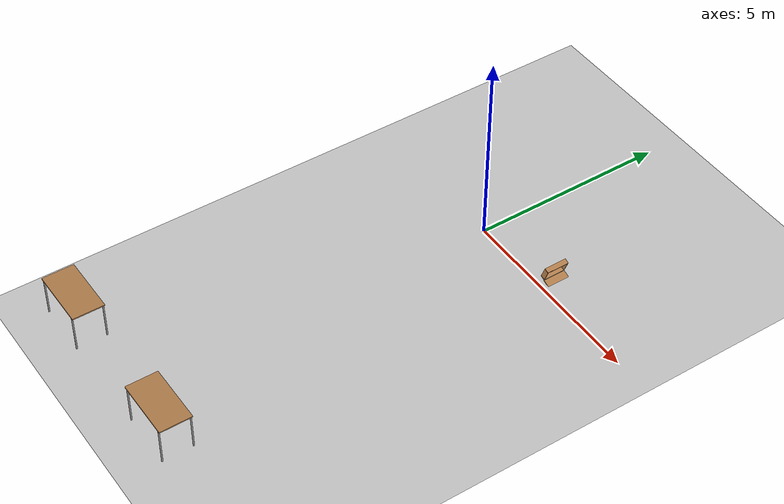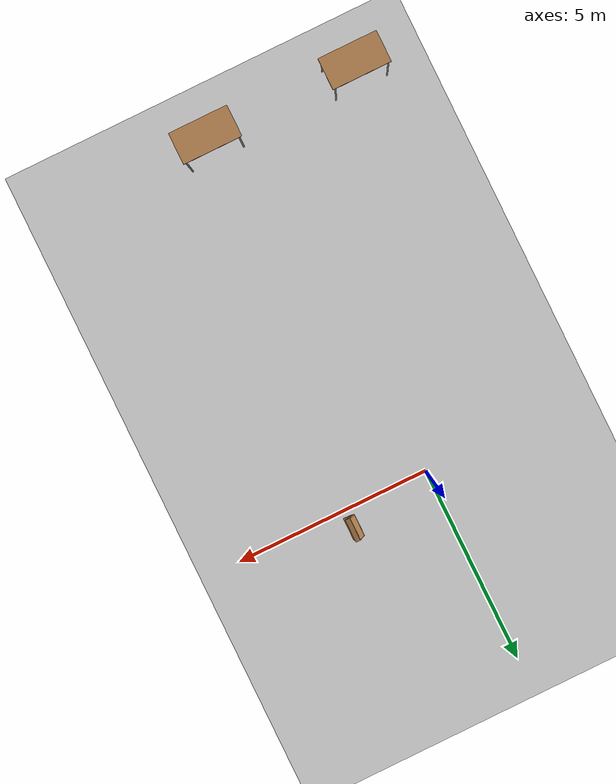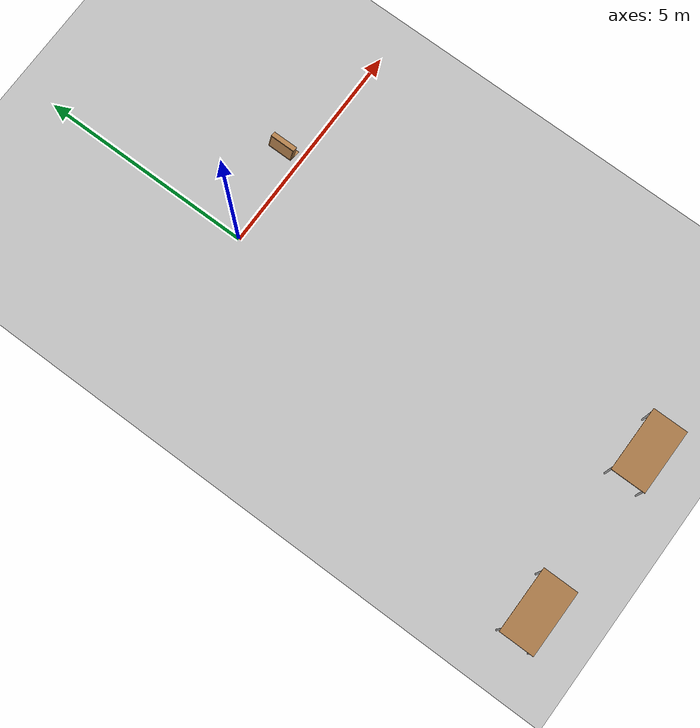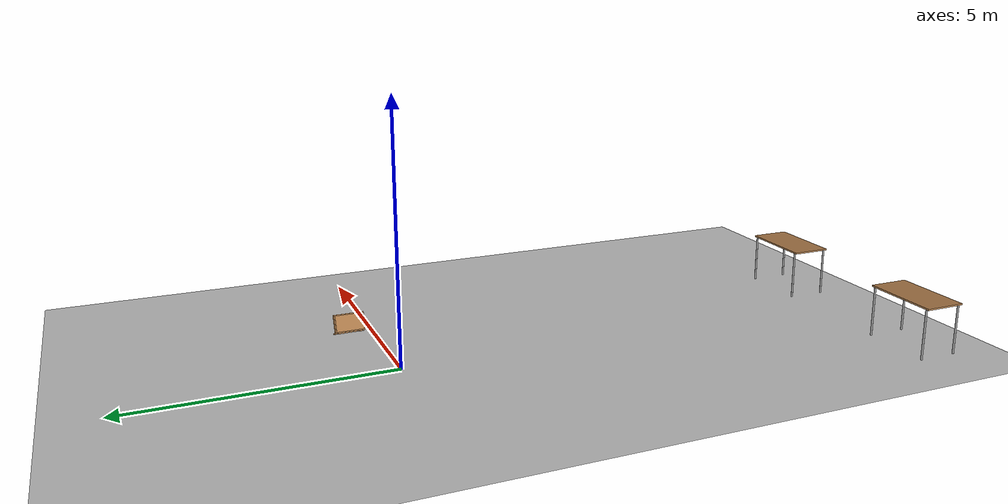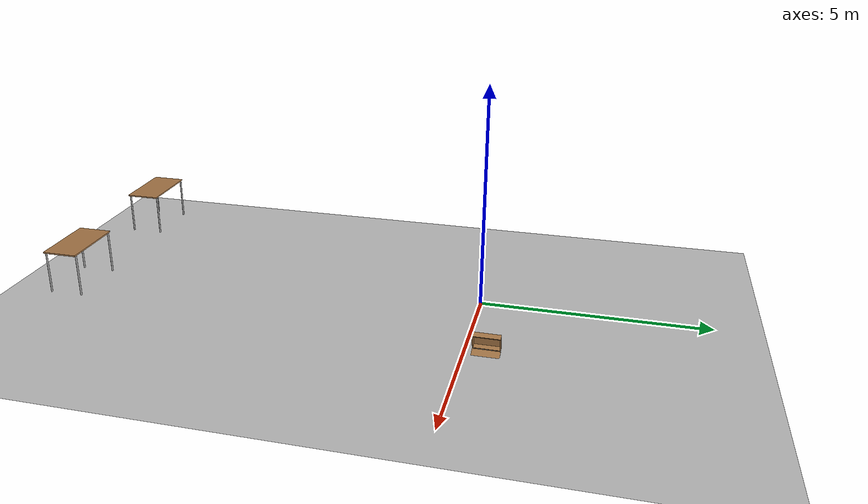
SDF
<sdf version="1.6">
 <world name="default">
  <light name="sun" type="directional">
   <pose>0 0 10 0 -0 0</pose>
   <diffuse>0.8 0.8 0.8 1</diffuse>
   <specular>0.2 0.2 0.2 1</specular>
   <attenuation>
    <range>1000</range>
    <constant>0.9</constant>
    <linear>0.01</linear>
    <quadratic>0.001</quadratic>
   </attenuation>
   <direction>-0.5 0.1 -0.9</direction>
  </light>
  <model name="ground_plane">
   <static>1</static>
   <link name="link">
    <collision name="collision">
     <geometry><plane><normal>0 0 1</normal><size>100 100</size></plane></geometry>
     <surface>
      <contact><collide_bitmask>65535</collide_bitmask></contact>
      <friction><ode><mu>100</mu><mu2>50</mu2></ode></friction>
     </surface>
    </collision>
    <visual name="visual">
     <cast_shadows>0</cast_shadows>
     <geometry><plane><normal>0 0 1</normal><size>100 100</size></plane></geometry>
     <material>
      <script><uri>file://media/materials/scripts/gazebo.material</uri><name>Gazebo/Grey</name></script>
     </material>
    </visual>
   </link>
  </model>
  <gravity>0 0 -9.8</gravity>
  <magnetic_field>6e-06 2.3e-05 -4.2e-05</magnetic_field>
  <atmosphere type="adiabatic"/>
  <physics name="default_physics" default="0" type="ode">
   <max_step_size>0.001</max_step_size>
   <real_time_factor>1</real_time_factor>
   <real_time_update_rate>1000</real_time_update_rate>
  </physics>
  <scene><ambient>0.4 0.4 0.4 1</ambient><background>0.7 0.7 0.7 1</background><shadows>1</shadows></scene>
  <spherical_coordinates>
   <surface_model>EARTH_WGS84</surface_model>
   <latitude_deg>0</latitude_deg>
   <longitude_deg>0</longitude_deg>
   <elevation>0</elevation>
   <heading_deg>0</heading_deg>
  </spherical_coordinates>
  <model name="table">
   <static>1</static>
   <link name="link">
    <collision name="surface">
     <pose>0 0 1 0 -0 0</pose>
     <geometry><box><size>1.5 0.8 0.03</size></box></geometry>
     <surface><friction><ode><mu>0.6</mu><mu2>0.6</mu2></ode></friction></surface>
    </collision>
    <visual name="visual1">
     <pose>0 0 1 0 -0 0</pose>
     <geometry><box><size>1.5 0.8 0.03</size></box></geometry>
     <material>
      <script><uri>file://media/materials/scripts/gazebo.material</uri><name>Gazebo/Wood</name></script>
     </material>
    </visual>
    <collision name="front_left_leg">
     <pose>0.68 0.38 0.5 0 -0 0</pose>
     <geometry><cylinder><radius>0.02</radius><length>1</length></cylinder></geometry>
    </collision>
    <visual name="front_left_leg">
     <pose>0.68 0.38 0.5 0 -0 0</pose>
     <geometry><cylinder><radius>0.02</radius><length>1</length></cylinder></geometry>
     <material>
      <script><uri>file://media/materials/scripts/gazebo.material</uri><name>Gazebo/Grey</name></script>
     </material>
    </visual>
    <collision name="front_right_leg">
     <pose>0.68 -0.38 0.5 0 -0 0</pose>
     <geometry><cylinder><radius>0.02</radius><length>1</length></cylinder></geometry>
    </collision>
    <visual name="front_right_leg">
     <pose>0.68 -0.38 0.5 0 -0 0</pose>
     <geometry><cylinder><radius>0.02</radius><length>1</length></cylinder></geometry>
     <material>
      <script><uri>file://media/materials/scripts/gazebo.material</uri><name>Gazebo/Grey</name></script>
     </material>
    </visual>
    <collision name="back_right_leg">
     <pose>-0.68 -0.38 0.5 0 -0 0</pose>
     <geometry><cylinder><radius>0.02</radius><length>1</length></cylinder></geometry>
    </collision>
    <visual name="back_right_leg">
     <pose>-0.68 -0.38 0.5 0 -0 0</pose>
     <geometry><cylinder><radius>0.02</radius><length>1</length></cylinder></geometry>
     <material>
      <script><uri>file://media/materials/scripts/gazebo.material</uri><name>Gazebo/Grey</name></script>
     </material>
    </visual>
    <collision name="back_left_leg">
     <pose>-0.68 0.38 0.5 0 -0 0</pose>
     <geometry><cylinder><radius>0.02</radius><length>1</length></cylinder></geometry>
    </collision>
    <visual name="back_left_leg">
     <pose>-0.68 0.38 0.5 0 -0 0</pose>
     <geometry><cylinder><radius>0.02</radius><length>1</length></cylinder></geometry>
     <material>
      <script><uri>file://media/materials/scripts/gazebo.material</uri><name>Gazebo/Grey</name></script>
     </material>
    </visual>
   </link>
   <pose>1.18623 -9.30961 0 0 -0 0</pose>
  </model>
  <model name="table_0">
   <static>1</static>
   <link name="link">
    <collision name="surface">
     <pose>0 0 1 0 -0 0</pose>
     <geometry><box><size>1.5 0.8 0.03</size></box></geometry>
     <surface><friction><ode><mu>0.6</mu><mu2>0.6</mu2></ode></friction></surface>
    </collision>
    <visual name="visual1">
     <pose>0 0 1 0 -0 0</pose>
     <geometry><box><size>1.5 0.8 0.03</size></box></geometry>
     <material>
      <script><uri>file://media/materials/scripts/gazebo.material</uri><name>Gazebo/Wood</name></script>
     </material>
    </visual>
    <collision name="front_left_leg">
     <pose>0.68 0.38 0.5 0 -0 0</pose>
     <geometry><cylinder><radius>0.02</radius><length>1</length></cylinder></geometry>
    </collision>
    <visual name="front_left_leg">
     <pose>0.68 0.38 0.5 0 -0 0</pose>
     <geometry><cylinder><radius>0.02</radius><length>1</length></cylinder></geometry>
     <material>
      <script><uri>file://media/materials/scripts/gazebo.material</uri><name>Gazebo/Grey</name></script>
     </material>
    </visual>
    <collision name="front_right_leg">
     <pose>0.68 -0.38 0.5 0 -0 0</pose>
     <geometry><cylinder><radius>0.02</radius><length>1</length></cylinder></geometry>
    </collision>
    <visual name="front_right_leg">
     <pose>0.68 -0.38 0.5 0 -0 0</pose>
     <geometry><cylinder><radius>0.02</radius><length>1</length></cylinder></geometry>
     <material>
      <script><uri>file://media/materials/scripts/gazebo.material</uri><name>Gazebo/Grey</name></script>
     </material>
    </visual>
    <collision name="back_right_leg">
     <pose>-0.68 -0.38 0.5 0 -0 0</pose>
     <geometry><cylinder><radius>0.02</radius><length>1</length></cylinder></geometry>
    </collision>
    <visual name="back_right_leg">
     <pose>-0.68 -0.38 0.5 0 -0 0</pose>
     <geometry><cylinder><radius>0.02</radius><length>1</length></cylinder></geometry>
     <material>
      <script><uri>file://media/materials/scripts/gazebo.material</uri><name>Gazebo/Grey</name></script>
     </material>
    </visual>
    <collision name="back_left_leg">
     <pose>-0.68 0.38 0.5 0 -0 0</pose>
     <geometry><cylinder><radius>0.02</radius><length>1</length></cylinder></geometry>
    </collision>
    <visual name="back_left_leg">
     <pose>-0.68 0.38 0.5 0 -0 0</pose>
     <geometry><cylinder><radius>0.02</radius><length>1</length></cylinder></geometry>
     <material>
      <script><uri>file://media/materials/scripts/gazebo.material</uri><name>Gazebo/Grey</name></script>
     </material>
    </visual>
   </link>
   <pose>-2.65841 -9.34469 0 0 -0 0</pose>
  </model>
  <model name="wooden_case">
   <link name="base">
    <pose>0 0 0.024 0 -0 0</pose>
    <inertial>
     <pose>-0.022184 0 0.171592 0 -0 0</pose>
     <mass>3.96264</mass>
     <inertia>
      <ixx>0.213536</ixx>
      <ixy>0</ixy>
      <ixz>0.000779377</ixz>
      <iyy>0.0708943</iyy>
      <iyz>0</iyz>
      <izz>0.154604</izz>
     </inertia>
    </inertial>
    <collision name="collision_back">
     <pose>-0.053975 0 0.1778 0 -0 0</pose>
     <geometry><box><size>0.01905 0.5461 0.3175</size></box></geometry>
     <surface>
      <contact>
       <poissons_ratio>0.347</poissons_ratio>
       <elastic_modulus>8.8e+09</elastic_modulus>
       <ode><kp>100000</kp><kd>100</kd><max_vel>100</max_vel><min_depth>0.001</min_depth></ode>
      </contact>
      <friction>
       <torsional>
        <coefficient>1</coefficient>
        <use_patch_radius>0</use_patch_radius>
        <surface_radius>0.01</surface_radius>
       </torsional>
      </friction>
     </surface>
    </collision>
    <visual name="visual_back">
     <pose>-0.053975 0 0.1778 0 -0 0</pose>
     <geometry><box><size>0.01905 0.5461 0.3175</size></box></geometry>
     <material>
      <script><uri>file://media/materials/scripts/gazebo.material</uri><name>Gazebo/Wood</name></script>
     </material>
    </visual>
    <collision name="collision_bottom">
     <pose>0 0 0.009525 0 -0 0</pose>
     <geometry><box><size>0.127 0.5842 0.01905</size></box></geometry>
     <surface>
      <contact>
       <poissons_ratio>0.347</poissons_ratio>
       <elastic_modulus>8.8e+09</elastic_modulus>
       <ode><kp>100000</kp><kd>100</kd><max_vel>100</max_vel><min_depth>0.001</min_depth></ode>
      </contact>
      <friction>
       <torsional>
        <coefficient>1</coefficient>
        <use_patch_radius>0</use_patch_radius>
        <surface_radius>0.01</surface_radius>
       </torsional>
      </friction>
     </surface>
    </collision>
    <visual name="visual_bottom">
     <pose>0 0 0.009525 0 -0 0</pose>
     <geometry><box><size>0.127 0.5842 0.01905</size></box></geometry>
     <material>
      <script><uri>file://media/materials/scripts/gazebo.material</uri><name>Gazebo/Wood</name></script>
     </material>
    </visual>
    <collision name="collision_top">
     <pose>0 0 0.346075 0 -0 0</pose>
     <geometry><box><size>0.127 0.5842 0.01905</size></box></geometry>
     <surface>
      <contact>
       <poissons_ratio>0.347</poissons_ratio>
       <elastic_modulus>8.8e+09</elastic_modulus>
       <ode><kp>100000</kp><kd>100</kd><max_vel>100</max_vel><min_depth>0.001</min_depth></ode>
      </contact>
      <friction>
       <torsional>
        <coefficient>1</coefficient>
        <use_patch_radius>0</use_patch_radius>
        <surface_radius>0.01</surface_radius>
       </torsional>
      </friction>
     </surface>
    </collision>
    <visual name="visual_top">
     <pose>0 0 0.346075 0 -0 0</pose>
     <geometry><box><size>0.127 0.5842 0.01905</size></box></geometry>
     <material>
      <script><uri>file://media/materials/scripts/gazebo.material</uri><name>Gazebo/Wood</name></script>
     </material>
    </visual>
    <collision name="collision_left">
     <pose>0 -0.282575 0.1778 0 -0 0</pose>
     <geometry><box><size>0.127 0.01905 0.3175</size></box></geometry>
     <surface>
      <contact>
       <poissons_ratio>0.347</poissons_ratio>
       <elastic_modulus>8.8e+09</elastic_modulus>
       <ode><kp>100000</kp><kd>100</kd><max_vel>100</max_vel><min_depth>0.001</min_depth></ode>
      </contact>
      <friction>
       <torsional>
        <coefficient>1</coefficient>
        <use_patch_radius>0</use_patch_radius>
        <surface_radius>0.01</surface_radius>
       </torsional>
      </friction>
     </surface>
    </collision>
    <visual name="visual_left">
     <pose>0 -0.282575 0.1778 0 -0 0</pose>
     <geometry><box><size>0.127 0.01905 0.3175</size></box></geometry>
     <material>
      <script><uri>file://media/materials/scripts/gazebo.material</uri><name>Gazebo/Wood</name></script>
     </material>
    </visual>
    <collision name="collision_right">
     <pose>0 0.282575 0.1778 0 -0 0</pose>
     <geometry><box><size>0.127 0.01905 0.3175</size></box></geometry>
     <surface>
      <contact>
       <poissons_ratio>0.347</poissons_ratio>
       <elastic_modulus>8.8e+09</elastic_modulus>
       <ode><kp>100000</kp><kd>100</kd><max_vel>100</max_vel><min_depth>0.001</min_depth></ode>
      </contact>
      <friction>
       <torsional>
        <coefficient>1</coefficient>
        <use_patch_radius>0</use_patch_radius>
        <surface_radius>0.01</surface_radius>
       </torsional>
      </friction>
     </surface>
    </collision>
    <visual name="visual_right">
     <pose>0 0.282575 0.1778 0 -0 0</pose>
     <geometry><box><size>0.127 0.01905 0.3175</size></box></geometry>
     <material>
      <script><uri>file://media/materials/scripts/gazebo.material</uri><name>Gazebo/Wood</name></script>
     </material>
    </visual>
    <collision name="collision_block_left">
     <pose>0.0095 -0.2151 -0.012 0 -0 0</pose>
     <geometry><box><size>0.108 0.05 0.024</size></box></geometry>
     <surface>
      <contact>
       <poissons_ratio>0.347</poissons_ratio>
       <elastic_modulus>8.8e+09</elastic_modulus>
       <ode><kp>100000</kp><kd>100</kd><max_vel>100</max_vel><min_depth>0.001</min_depth></ode>
      </contact>
      <friction>
       <torsional>
        <coefficient>1</coefficient>
        <use_patch_radius>0</use_patch_radius>
        <surface_radius>0.01</surface_radius>
       </torsional>
      </friction>
     </surface>
    </collision>
    <visual name="visual_block_left">
     <pose>0.0095 -0.2151 -0.012 0 -0 0</pose>
     <geometry><box><size>0.108 0.05 0.024</size></box></geometry>
     <material>
      <script><uri>file://media/materials/scripts/gazebo.material</uri><name>Gazebo/Wood</name></script>
     </material>
    </visual>
    <collision name="collision_block_right">
     <pose>0.0095 0.2151 -0.012 0 -0 0</pose>
     <geometry><box><size>0.108 0.05 0.024</size></box></geometry>
     <surface>
      <contact>
       <poissons_ratio>0.347</poissons_ratio>
       <elastic_modulus>8.8e+09</elastic_modulus>
       <ode><kp>100000</kp><kd>100</kd><max_vel>100</max_vel><min_depth>0.001</min_depth></ode>
      </contact>
      <friction>
       <torsional>
        <coefficient>1</coefficient>
        <use_patch_radius>0</use_patch_radius>
        <surface_radius>0.01</surface_radius>
       </torsional>
      </friction>
     </surface>
    </collision>
    <visual name="visual_block_right">
     <pose>0.0095 0.2151 -0.012 0 -0 0</pose>
     <geometry><box><size>0.108 0.05 0.024</size></box></geometry>
     <material>
      <script><uri>file://media/materials/scripts/gazebo.material</uri><name>Gazebo/Wood</name></script>
     </material>
    </visual>
   </link>
   <link name="lid">
    <pose>0.243775 0 0.009525 0 -0 0</pose>
    <inertial>
     <mass>1.97874</mass>
     <inertia>
      <ixx>0.0563367</ixx>
      <ixy>0</ixy>
      <ixz>0</ixz>
      <iyy>0.020911</iyy>
      <iyz>0</iyz>
      <izz>0.0771281</izz>
     </inertia>
    </inertial>
    <collision name="collision">
     <geometry><box><size>0.3556 0.5842 0.01905</size></box></geometry>
     <surface>
      <contact>
       <poissons_ratio>0.347</poissons_ratio>
       <elastic_modulus>8.8e+09</elastic_modulus>
       <ode><kp>100000</kp><kd>100</kd><max_vel>100</max_vel><min_depth>0.001</min_depth></ode>
      </contact>
      <friction>
       <torsional>
        <coefficient>1</coefficient>
        <use_patch_radius>0</use_patch_radius>
        <surface_radius>0.01</surface_radius>
       </torsional>
      </friction>
     </surface>
    </collision>
    <visual name="visual">
     <geometry><box><size>0.3556 0.5842 0.01905</size></box></geometry>
     <material>
      <script><uri>file://media/materials/scripts/gazebo.material</uri><name>Gazebo/Wood</name></script>
     </material>
    </visual>
    <visual name="tee_nut_1">
     <pose>0.122 -0.216 0 0 -0 0</pose>
     <geometry><cylinder><radius>0.00635</radius><length>0.0192405</length></cylinder></geometry>
     <material>
      <script><uri>file://media/materials/scripts/gazebo.material</uri><name>Gazebo/Grey</name></script>
     </material>
    </visual>
    <visual name="tee_nut_2">
     <pose>0.122 -0.088 0 0 -0 0</pose>
     <geometry><cylinder><radius>0.00635</radius><length>0.0192405</length></cylinder></geometry>
     <material>
      <script><uri>file://media/materials/scripts/gazebo.material</uri><name>Gazebo/Grey</name></script>
     </material>
    </visual>
    <visual name="tee_nut_3">
     <pose>0.122 0.088 0 0 -0 0</pose>
     <geometry><cylinder><radius>0.00635</radius><length>0.0192405</length></cylinder></geometry>
     <material>
      <script><uri>file://media/materials/scripts/gazebo.material</uri><name>Gazebo/Grey</name></script>
     </material>
    </visual>
    <visual name="tee_nut_4">
     <pose>0.122 0.216 0 0 -0 0</pose>
     <geometry><cylinder><radius>0.00635</radius><length>0.0192405</length></cylinder></geometry>
     <material>
      <script><uri>file://media/materials/scripts/gazebo.material</uri><name>Gazebo/Grey</name></script>
     </material>
    </visual>
   </link>
   <joint name="lid_hinge" type="revolute">
    <pose>-0.1778 0 0.01905 0 -0 0</pose>
    <parent>base</parent>
    <child>lid</child>
    <axis>
     <xyz>0 1 0</xyz>
     <limit><upper>0.523599</upper><lower>-1.5708</lower></limit>
     <use_parent_model_frame>0</use_parent_model_frame>
     <dynamics><spring_reference>0</spring_reference><spring_stiffness>0</spring_stiffness></dynamics>
    </axis>
   </joint>
   <pose>2.04648 0.448325 0.054293 -0.000911 0.342109 -0.000414</pose>
  </model>
 </world>
</sdf>
